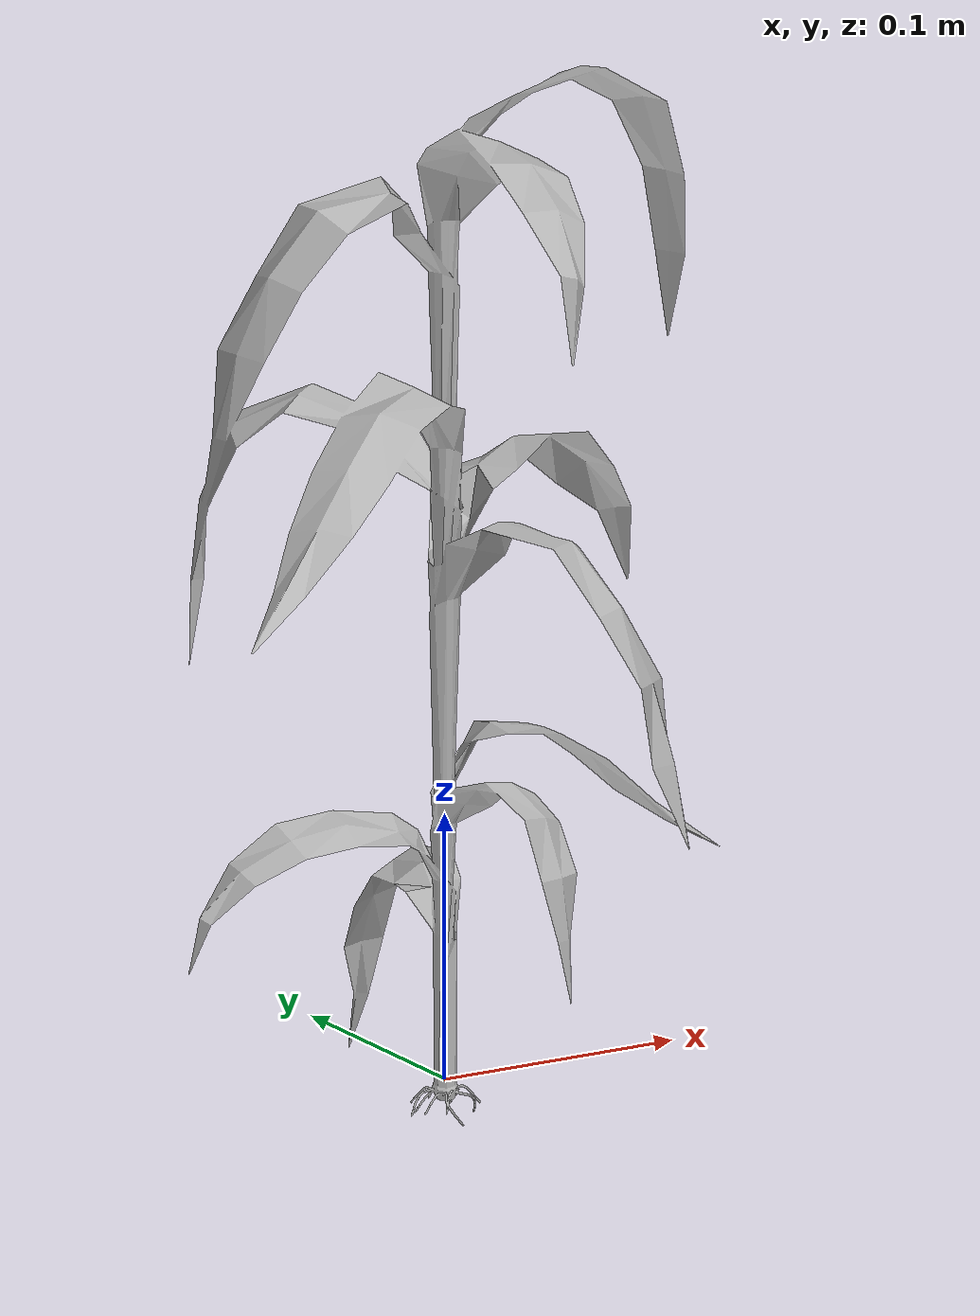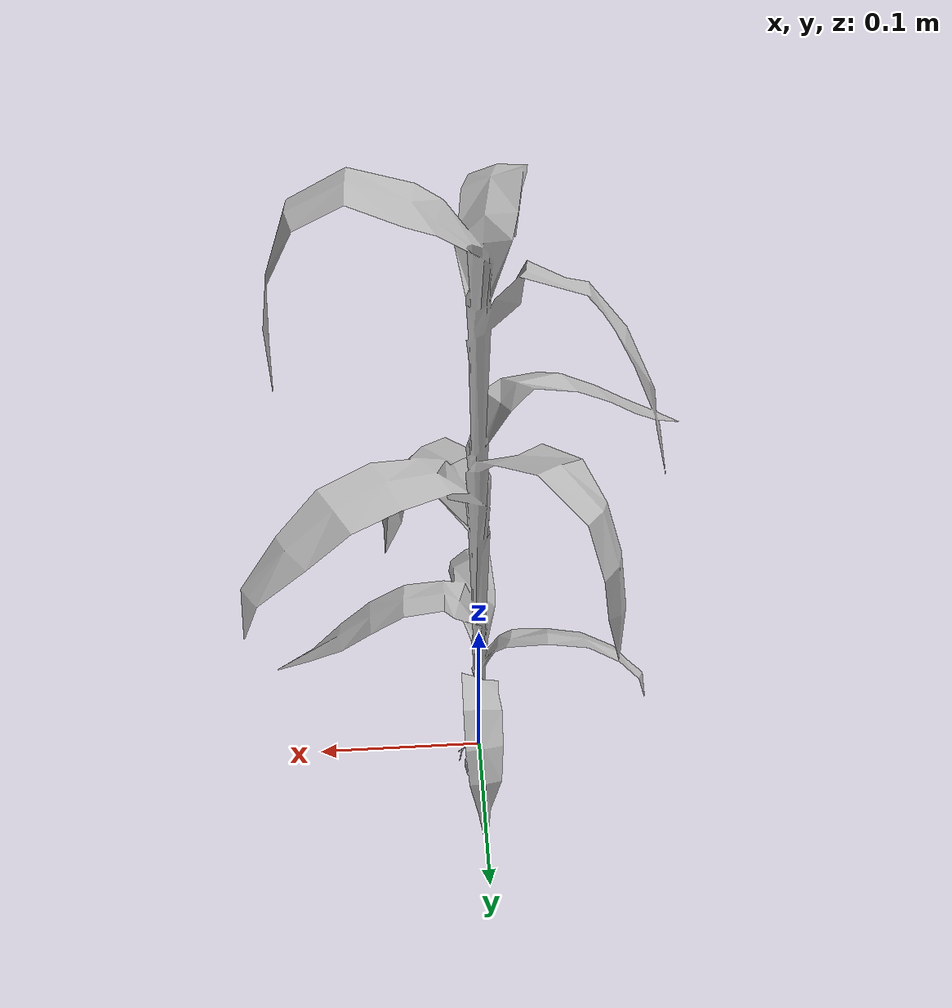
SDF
<?xml version="1.0" ?>
<sdf version="1.4">
  <model name="corn_5">
    <static>1</static>
    <link name="link">
      <inertial>
        <mass>0.2</mass>
        <inertia>
          <ixx>0.166667</ixx>
          <ixy>0</ixy>
          <ixz>0</ixz>
          <iyy>0.166667</iyy>
          <iyz>0</iyz>
          <izz>0.166667</izz>
        </inertia>
      </inertial>
      <collision name="collision">
        <geometry>
          <mesh>
            <uri>model://corn_5/meshes/corn.dae</uri>
            <scale>0.25 0.25 0.25</scale>
          </mesh>
        </geometry>
        <pose>0 0 0 0 0 0</pose>
        <surface>
          <friction>
            <ode>
              <mu>0.0</mu>
              <mu2>0.0</mu2>
            </ode>
          </friction>
          <contact>
            <ode>
              <kp>0.0</kp>
              <kd>0.0</kd>
              <max_vel>0.0</max_vel>
              <min_depth>0.002</min_depth>
            </ode>
          </contact>
        </surface>
      </collision>
      <visual name="visual">
        <geometry>
          <mesh>
            <uri>model://corn_5/meshes/corn.dae</uri>
            <scale>0.25 0.25 0.25</scale>
          </mesh>
        </geometry>
        <pose>0 0 0 0 0 0</pose>
      </visual>
      <velocity_decay>
        <linear>0.000000</linear>
        <angular>0.000000</angular>
      </velocity_decay>
      <self_collide>0</self_collide>
      <kinematic>0</kinematic>
      <gravity>1</gravity>
    </link>
  </model>
</sdf>
